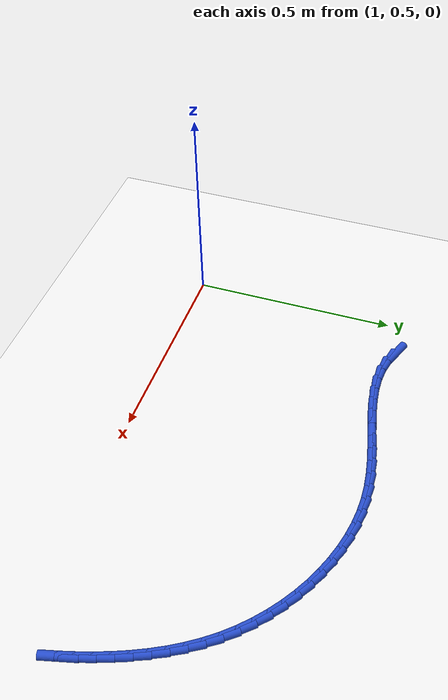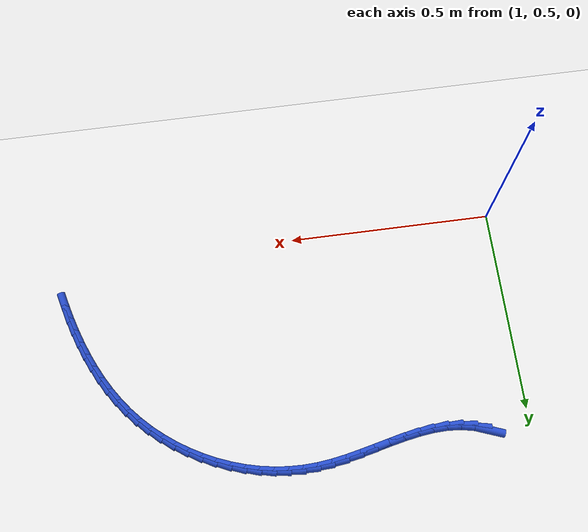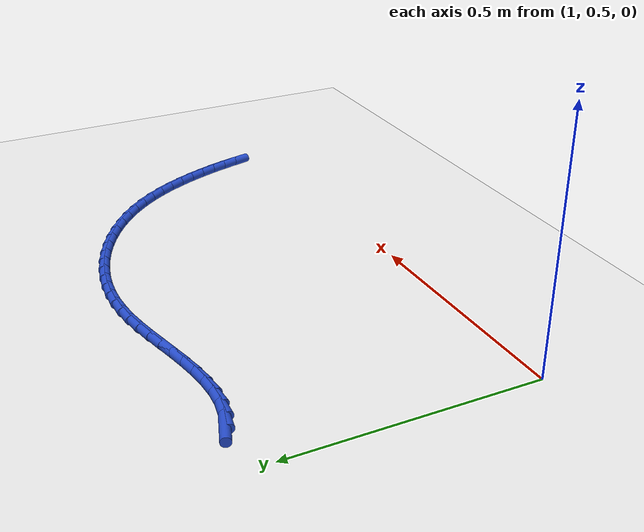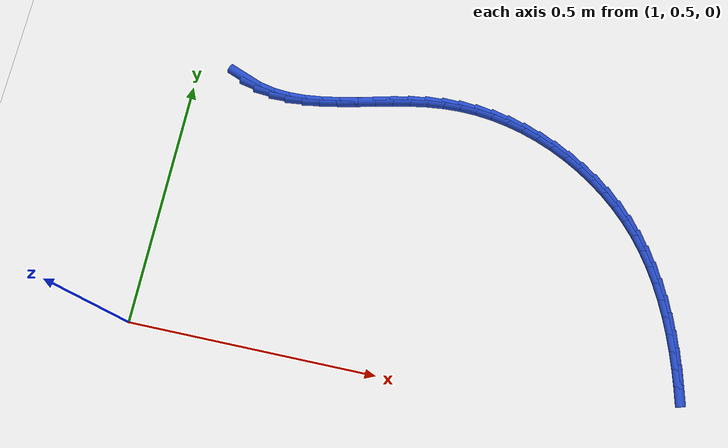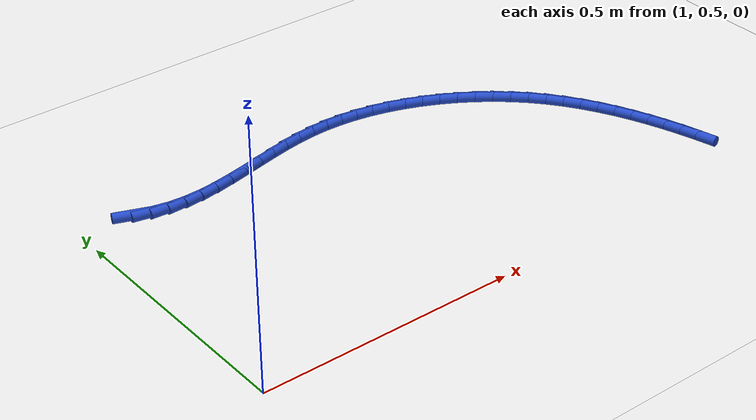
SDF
<sdf version="1.6">
 <world name="default">
  <model name="ground_plane">
   <static>1</static>
   <link name="link">
    <collision name="collision">
     <geometry><plane><normal>0 0 1</normal><size>100 100</size></plane></geometry>
     <surface><friction><ode><mu>100</mu><mu2>50</mu2></ode></friction></surface>
    </collision>
    <visual name="visual">
     <cast_shadows>0</cast_shadows>
     <geometry><plane><normal>0 0 1</normal><size>100 100</size></plane></geometry>
     <material>
      <script><uri>file://media/materials/scripts/gazebo.material</uri><name>Gazebo/WhiteGlow</name></script>
     </material>
    </visual>
   </link>
  </model>
  <model name="line">
   <link name="link_51">
    <pose>1.102719932568063 1.0402538538285762 0.01 0 1.57 -0.3642983789219908</pose>
    <collision name="collision">
     <geometry><cylinder><radius>0.01</radius><length>0.08</length></cylinder></geometry>
    </collision>
    <visual name="visual">
     <material>
      <script><name>Gazebo/Blue</name><uri>file://media/materials/scripts/gazebo.material</uri></script>
     </material>
     <geometry><cylinder><radius>0.01</radius><length>0.08</length></cylinder></geometry>
    </visual>
   </link>
   <link name="link_52">
    <pose>1.1334945207863705 1.0285189431209687 0.01 0 1.57 -0.20663789408005165</pose>
    <collision name="collision">
     <geometry><cylinder><radius>0.01</radius><length>0.08</length></cylinder></geometry>
    </collision>
    <visual name="visual">
     <material>
      <script><name>Gazebo/Blue</name><uri>file://media/materials/scripts/gazebo.material</uri></script>
     </material>
     <geometry><cylinder><radius>0.01</radius><length>0.08</length></cylinder></geometry>
    </visual>
   </link>
   <link name="link_53">
    <pose>1.1654971890544448 1.021810220484296 0.01 0 1.57 -0.07263104191738969</pose>
    <collision name="collision">
     <geometry><cylinder><radius>0.01</radius><length>0.08</length></cylinder></geometry>
    </collision>
    <visual name="visual">
     <material>
      <script><name>Gazebo/Blue</name><uri>file://media/materials/scripts/gazebo.material</uri></script>
     </material>
     <geometry><cylinder><radius>0.01</radius><length>0.08</length></cylinder></geometry>
    </visual>
   </link>
   <link name="link_54">
    <pose>1.198554291333085 1.0194050178518521 0.01 0 1.57 0.034627355146794686</pose>
    <collision name="collision">
     <geometry><cylinder><radius>0.01</radius><length>0.08</length></cylinder></geometry>
    </collision>
    <visual name="visual">
     <material>
      <script><name>Gazebo/Blue</name><uri>file://media/materials/scripts/gazebo.material</uri></script>
     </material>
     <geometry><cylinder><radius>0.01</radius><length>0.08</length></cylinder></geometry>
    </visual>
   </link>
   <link name="link_55">
    <pose>1.2324921815830912 1.0205806671569304 0.01 0 1.57 0.11591132369253221</pose>
    <collision name="collision">
     <geometry><cylinder><radius>0.01</radius><length>0.08</length></cylinder></geometry>
    </collision>
    <visual name="visual">
     <material>
      <script><name>Gazebo/Blue</name><uri>file://media/materials/scripts/gazebo.material</uri></script>
     </material>
     <geometry><cylinder><radius>0.01</radius><length>0.08</length></cylinder></geometry>
    </visual>
   </link>
   <link name="link_56">
    <pose>1.2671372137652637 1.0246145003328253 0.01 0 1.57 0.17360714549006903</pose>
    <collision name="collision">
     <geometry><cylinder><radius>0.01</radius><length>0.08</length></cylinder></geometry>
    </collision>
    <visual name="visual">
     <material>
      <script><name>Gazebo/Blue</name><uri>file://media/materials/scripts/gazebo.material</uri></script>
     </material>
     <geometry><cylinder><radius>0.01</radius><length>0.08</length></cylinder></geometry>
    </visual>
   </link>
   <link name="link_57">
    <pose>1.302315741840401 1.0307838493128298 0.01 0 1.57 0.21020078275851078</pose>
    <collision name="collision">
     <geometry><cylinder><radius>0.01</radius><length>0.08</length></cylinder></geometry>
    </collision>
    <visual name="visual">
     <material>
      <script><name>Gazebo/Blue</name><uri>file://media/materials/scripts/gazebo.material</uri></script>
     </material>
     <geometry><cylinder><radius>0.01</radius><length>0.08</length></cylinder></geometry>
    </visual>
   </link>
   <link name="link_58">
    <pose>1.337854119769304 1.0383660460302393 0.01 0 1.57 0.2275492981983495</pose>
    <collision name="collision">
     <geometry><cylinder><radius>0.01</radius><length>0.08</length></cylinder></geometry>
    </collision>
    <visual name="visual">
     <material>
      <script><name>Gazebo/Blue</name><uri>file://media/materials/scripts/gazebo.material</uri></script>
     </material>
     <geometry><cylinder><radius>0.01</radius><length>0.08</length></cylinder></geometry>
    </visual>
   </link>
   <link name="link_59">
    <pose>1.373578701512772 1.046638422418346 0.01 0 1.57 0.22660903773751515</pose>
    <collision name="collision">
     <geometry><cylinder><radius>0.01</radius><length>0.08</length></cylinder></geometry>
    </collision>
    <visual name="visual">
     <material>
      <script><name>Gazebo/Blue</name><uri>file://media/materials/scripts/gazebo.material</uri></script>
     </material>
     <geometry><cylinder><radius>0.01</radius><length>0.08</length></cylinder></geometry>
    </visual>
   </link>
   <link name="link_60">
    <pose>1.4093158410316056 1.054878310410445 0.01 0 1.57 0.2073626266164129</pose>
    <collision name="collision">
     <geometry><cylinder><radius>0.01</radius><length>0.08</length></cylinder></geometry>
    </collision>
    <visual name="visual">
     <material>
      <script><name>Gazebo/Blue</name><uri>file://media/materials/scripts/gazebo.material</uri></script>
     </material>
     <geometry><cylinder><radius>0.01</radius><length>0.08</length></cylinder></geometry>
    </visual>
   </link>
   <link name="link_61">
    <pose>1.4448918922866034 1.0623630419398298 0.01 0 1.57 0.16882816117359226</pose>
    <collision name="collision">
     <geometry><cylinder><radius>0.01</radius><length>0.08</length></cylinder></geometry>
    </collision>
    <visual name="visual">
     <material>
      <script><name>Gazebo/Blue</name><uri>file://media/materials/scripts/gazebo.material</uri></script>
     </material>
     <geometry><cylinder><radius>0.01</radius><length>0.08</length></cylinder></geometry>
    </visual>
   </link>
   <link name="link_62">
    <pose>1.4801332092385664 1.0683699489397944 0.01 0 1.57 0.11010865503921563</pose>
    <collision name="collision">
     <geometry><cylinder><radius>0.01</radius><length>0.08</length></cylinder></geometry>
    </collision>
    <visual name="visual">
     <material>
      <script><name>Gazebo/Blue</name><uri>file://media/materials/scripts/gazebo.material</uri></script>
     </material>
     <geometry><cylinder><radius>0.01</radius><length>0.08</length></cylinder></geometry>
    </visual>
   </link>
   <link name="link_63">
    <pose>1.5148835955431212 1.0722118059185342 0.01 0 1.57 0.04048648177134366</pose>
    <collision name="collision">
     <geometry><cylinder><radius>0.01</radius><length>0.08</length></cylinder></geometry>
    </collision>
    <visual name="visual">
     <material>
      <script><name>Gazebo/Blue</name><uri>file://media/materials/scripts/gazebo.material</uri></script>
     </material>
     <geometry><cylinder><radius>0.01</radius><length>0.08</length></cylinder></geometry>
    </visual>
   </link>
   <link name="link_64">
    <pose>1.5491837253871417 1.0736012567583848 0.01 0 1.57 -0.032268470238282845</pose>
    <collision name="collision">
     <geometry><cylinder><radius>0.01</radius><length>0.08</length></cylinder></geometry>
    </collision>
    <visual name="visual">
     <material>
      <script><name>Gazebo/Blue</name><uri>file://media/materials/scripts/gazebo.material</uri></script>
     </material>
     <geometry><cylinder><radius>0.01</radius><length>0.08</length></cylinder></geometry>
    </visual>
   </link>
   <link name="link_65">
    <pose>1.583198502156696 1.0725032708259334 0.01 0 1.57 -0.10627540384655525</pose>
    <collision name="collision">
     <geometry><cylinder><radius>0.01</radius><length>0.08</length></cylinder></geometry>
    </collision>
    <visual name="visual">
     <material>
      <script><name>Gazebo/Blue</name><uri>file://media/materials/scripts/gazebo.material</uri></script>
     </material>
     <geometry><cylinder><radius>0.01</radius><length>0.08</length></cylinder></geometry>
    </visual>
   </link>
   <link name="link_66">
    <pose>1.6170926354868682 1.0688875352620786 0.01 0 1.57 -0.17902174745376503</pose>
    <collision name="collision">
     <geometry><cylinder><radius>0.01</radius><length>0.08</length></cylinder></geometry>
    </collision>
    <visual name="visual">
     <material>
      <script><name>Gazebo/Blue</name><uri>file://media/materials/scripts/gazebo.material</uri></script>
     </material>
     <geometry><cylinder><radius>0.01</radius><length>0.08</length></cylinder></geometry>
    </visual>
   </link>
   <link name="link_67">
    <pose>1.6509018016746273 1.0627694602191808 0.01 0 1.57 -0.24901686770144857</pose>
    <collision name="collision">
     <geometry><cylinder><radius>0.01</radius><length>0.08</length></cylinder></geometry>
    </collision>
    <visual name="visual">
     <material>
      <script><name>Gazebo/Blue</name><uri>file://media/materials/scripts/gazebo.material</uri></script>
     </material>
     <geometry><cylinder><radius>0.01</radius><length>0.08</length></cylinder></geometry>
    </visual>
   </link>
   <link name="link_68">
    <pose>1.6844614030042033 1.0542354230206774 0.01 0 1.57 -0.3167102250577751</pose>
    <collision name="collision">
     <geometry><cylinder><radius>0.01</radius><length>0.08</length></cylinder></geometry>
    </collision>
    <visual name="visual">
     <material>
      <script><name>Gazebo/Blue</name><uri>file://media/materials/scripts/gazebo.material</uri></script>
     </material>
     <geometry><cylinder><radius>0.01</radius><length>0.08</length></cylinder></geometry>
    </visual>
   </link>
   <link name="link_69">
    <pose>1.717589582018257 1.0433779169858637 0.01 0 1.57 -0.38269236614280666</pose>
    <collision name="collision">
     <geometry><cylinder><radius>0.01</radius><length>0.08</length></cylinder></geometry>
    </collision>
    <visual name="visual">
     <material>
      <script><name>Gazebo/Blue</name><uri>file://media/materials/scripts/gazebo.material</uri></script>
     </material>
     <geometry><cylinder><radius>0.01</radius><length>0.08</length></cylinder></geometry>
    </visual>
   </link>
   <link name="link_70">
    <pose>1.7501044812594508 1.030289435434035 0.01 0 1.57 -0.4475578443174234</pose>
    <collision name="collision">
     <geometry><cylinder><radius>0.01</radius><length>0.08</length></cylinder></geometry>
    </collision>
    <visual name="visual">
     <material>
      <script><name>Gazebo/Blue</name><uri>file://media/materials/scripts/gazebo.material</uri></script>
     </material>
     <geometry><cylinder><radius>0.01</radius><length>0.08</length></cylinder></geometry>
    </visual>
   </link>
   <link name="link_71">
    <pose>1.7818242432704472 1.0150624716844867 0.01 0 1.57 -0.5118987391741399</pose>
    <collision name="collision">
     <geometry><cylinder><radius>0.01</radius><length>0.08</length></cylinder></geometry>
    </collision>
    <visual name="visual">
     <material>
      <script><name>Gazebo/Blue</name><uri>file://media/materials/scripts/gazebo.material</uri></script>
     </material>
     <geometry><cylinder><radius>0.01</radius><length>0.08</length></cylinder></geometry>
    </visual>
   </link>
   <link name="link_72">
    <pose>1.812567010593908 0.9977895190565139 0.01 0 1.57 -0.5763016322463971</pose>
    <collision name="collision">
     <geometry><cylinder><radius>0.01</radius><length>0.08</length></cylinder></geometry>
    </collision>
    <visual name="visual">
     <material>
      <script><name>Gazebo/Blue</name><uri>file://media/materials/scripts/gazebo.material</uri></script>
     </material>
     <geometry><cylinder><radius>0.01</radius><length>0.08</length></cylinder></geometry>
    </visual>
   </link>
   <link name="link_73">
    <pose>1.8421509257724957 0.9785630708694116 0.01 0 1.57 -0.6413459519899606</pose>
    <collision name="collision">
     <geometry><cylinder><radius>0.01</radius><length>0.08</length></cylinder></geometry>
    </collision>
    <visual name="visual">
     <material>
      <script><name>Gazebo/Blue</name><uri>file://media/materials/scripts/gazebo.material</uri></script>
     </material>
     <geometry><cylinder><radius>0.01</radius><length>0.08</length></cylinder></geometry>
    </visual>
   </link>
   <link name="link_74">
    <pose>1.8703941313488714 0.9574756204424754 0.01 0 1.57 -0.7076017939944604</pose>
    <collision name="collision">
     <geometry><cylinder><radius>0.01</radius><length>0.08</length></cylinder></geometry>
    </collision>
    <visual name="visual">
     <material>
      <script><name>Gazebo/Blue</name><uri>file://media/materials/scripts/gazebo.material</uri></script>
     </material>
     <geometry><cylinder><radius>0.01</radius><length>0.08</length></cylinder></geometry>
    </visual>
   </link>
   <link name="link_75">
    <pose>1.8971147698656987 0.9346196610950009 0.01 0 1.57 -0.7756253816816602</pose>
    <collision name="collision">
     <geometry><cylinder><radius>0.01</radius><length>0.08</length></cylinder></geometry>
    </collision>
    <visual name="visual">
     <material>
      <script><name>Gazebo/Blue</name><uri>file://media/materials/scripts/gazebo.material</uri></script>
     </material>
     <geometry><cylinder><radius>0.01</radius><length>0.08</length></cylinder></geometry>
    </visual>
   </link>
   <link name="link_76">
    <pose>1.9221309838656389 0.9100876861462822 0.01 0 1.57 -0.8459326086933203</pose>
    <collision name="collision">
     <geometry><cylinder><radius>0.01</radius><length>0.08</length></cylinder></geometry>
    </collision>
    <visual name="visual">
     <material>
      <script><name>Gazebo/Blue</name><uri>file://media/materials/scripts/gazebo.material</uri></script>
     </material>
     <geometry><cylinder><radius>0.01</radius><length>0.08</length></cylinder></geometry>
    </visual>
   </link>
   <link name="link_77">
    <pose>1.9452615540875606 0.8839723985985112 0.01 0 1.57 -0.9164689290670467</pose>
    <collision name="collision">
     <geometry><cylinder><radius>0.01</radius><length>0.08</length></cylinder></geometry>
    </collision>
    <visual name="visual">
     <material>
      <script><name>Gazebo/Blue</name><uri>file://media/materials/scripts/gazebo.material</uri></script>
     </material>
     <geometry><cylinder><radius>0.01</radius><length>0.08</length></cylinder></geometry>
    </visual>
   </link>
   <link name="link_78">
    <pose>1.9664143496878275 0.8563957719464457 0.01 0 1.57 -0.9822001873342894</pose>
    <collision name="collision">
     <geometry><cylinder><radius>0.01</radius><length>0.08</length></cylinder></geometry>
    </collision>
    <visual name="visual">
     <material>
      <script><name>Gazebo/Blue</name><uri>file://media/materials/scripts/gazebo.material</uri></script>
     </material>
     <geometry><cylinder><radius>0.01</radius><length>0.08</length></cylinder></geometry>
    </visual>
   </link>
   <link name="link_79">
    <pose>1.9856770438171225 0.82753885528218 0.01 0 1.57 -1.0424323221198628</pose>
    <collision name="collision">
     <geometry><cylinder><radius>0.01</radius><length>0.08</length></cylinder></geometry>
    </collision>
    <visual name="visual">
     <material>
      <script><name>Gazebo/Blue</name><uri>file://media/materials/scripts/gazebo.material</uri></script>
     </material>
     <geometry><cylinder><radius>0.01</radius><length>0.08</length></cylinder></geometry>
    </visual>
   </link>
   <link name="link_80">
    <pose>2.0031589468963054 0.7975898067426641 0.01 0 1.57 -1.0972437577045833</pose>
    <collision name="collision">
     <geometry><cylinder><radius>0.01</radius><length>0.08</length></cylinder></geometry>
    </collision>
    <visual name="visual">
     <material>
      <script><name>Gazebo/Blue</name><uri>file://media/materials/scripts/gazebo.material</uri></script>
     </material>
     <geometry><cylinder><radius>0.01</radius><length>0.08</length></cylinder></geometry>
    </visual>
   </link>
   <link name="link_81">
    <pose>2.018969369346235 0.7667367844648457 0.01 0 1.57 -1.1468293262882083</pose>
    <collision name="collision">
     <geometry><cylinder><radius>0.01</radius><length>0.08</length></cylinder></geometry>
    </collision>
    <visual name="visual">
     <material>
      <script><name>Gazebo/Blue</name><uri>file://media/materials/scripts/gazebo.material</uri></script>
     </material>
     <geometry><cylinder><radius>0.01</radius><length>0.08</length></cylinder></geometry>
    </visual>
   </link>
   <link name="link_82">
    <pose>2.033217621587772 0.7351679465856736 0.01 0 1.57 -1.1914509349750673</pose>
    <collision name="collision">
     <geometry><cylinder><radius>0.01</radius><length>0.08</length></cylinder></geometry>
    </collision>
    <visual name="visual">
     <material>
      <script><name>Gazebo/Blue</name><uri>file://media/materials/scripts/gazebo.material</uri></script>
     </material>
     <geometry><cylinder><radius>0.01</radius><length>0.08</length></cylinder></geometry>
    </visual>
   </link>
   <link name="link_83">
    <pose>2.0460130140417743 0.7030714512420967 0.01 0 1.57 -1.2313983067011676</pose>
    <collision name="collision">
     <geometry><cylinder><radius>0.01</radius><length>0.08</length></cylinder></geometry>
    </collision>
    <visual name="visual">
     <material>
      <script><name>Gazebo/Blue</name><uri>file://media/materials/scripts/gazebo.material</uri></script>
     </material>
     <geometry><cylinder><radius>0.01</radius><length>0.08</length></cylinder></geometry>
    </visual>
   </link>
   <link name="link_84">
    <pose>2.0574648571291014 0.670635456571063 0.01 0 1.57 -1.266959492139023</pose>
    <collision name="collision">
     <geometry><cylinder><radius>0.01</radius><length>0.08</length></cylinder></geometry>
    </collision>
    <visual name="visual">
     <material>
      <script><name>Gazebo/Blue</name><uri>file://media/materials/scripts/gazebo.material</uri></script>
     </material>
     <geometry><cylinder><radius>0.01</radius><length>0.08</length></cylinder></geometry>
    </visual>
   </link>
   <link name="link_85">
    <pose>2.067682461270614 0.6380481207095213 0.01 0 1.57 -1.2983993574538215</pose>
    <collision name="collision">
     <geometry><cylinder><radius>0.01</radius><length>0.08</length></cylinder></geometry>
    </collision>
    <visual name="visual">
     <material>
      <script><name>Gazebo/Blue</name><uri>file://media/materials/scripts/gazebo.material</uri></script>
     </material>
     <geometry><cylinder><radius>0.01</radius><length>0.08</length></cylinder></geometry>
    </visual>
   </link>
   <link name="link_86">
    <pose>2.0767751369859653 0.6054976013803022 0.01 0 1.57 -1.3259602663861711</pose>
    <collision name="collision">
     <geometry><cylinder><radius>0.01</radius><length>0.08</length></cylinder></geometry>
    </collision>
    <visual name="visual">
     <material>
      <script><name>Gazebo/Blue</name><uri>file://media/materials/scripts/gazebo.material</uri></script>
     </material>
     <geometry><cylinder><radius>0.01</radius><length>0.08</length></cylinder></geometry>
    </visual>
   </link>
  </model>
 </world>
</sdf>
